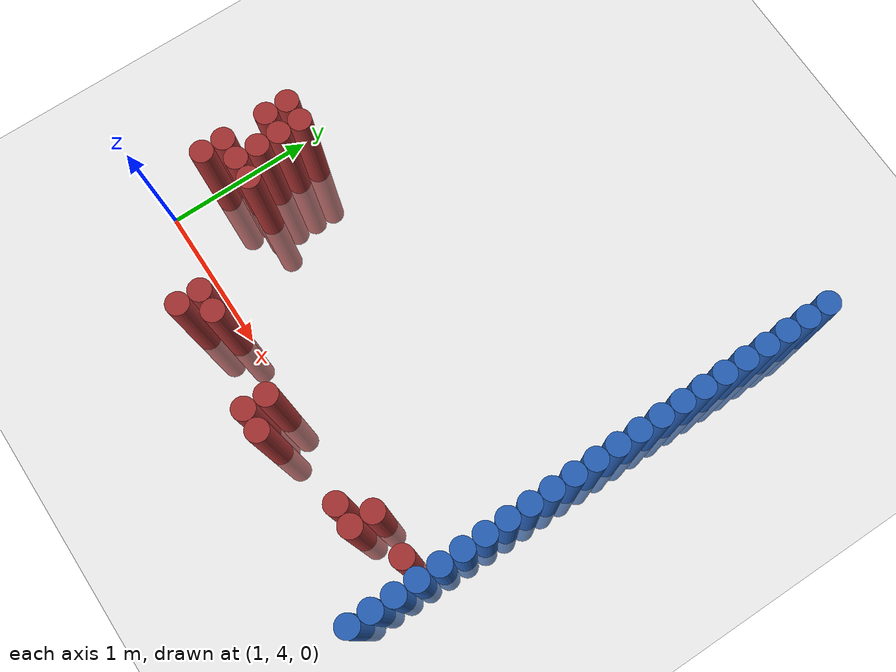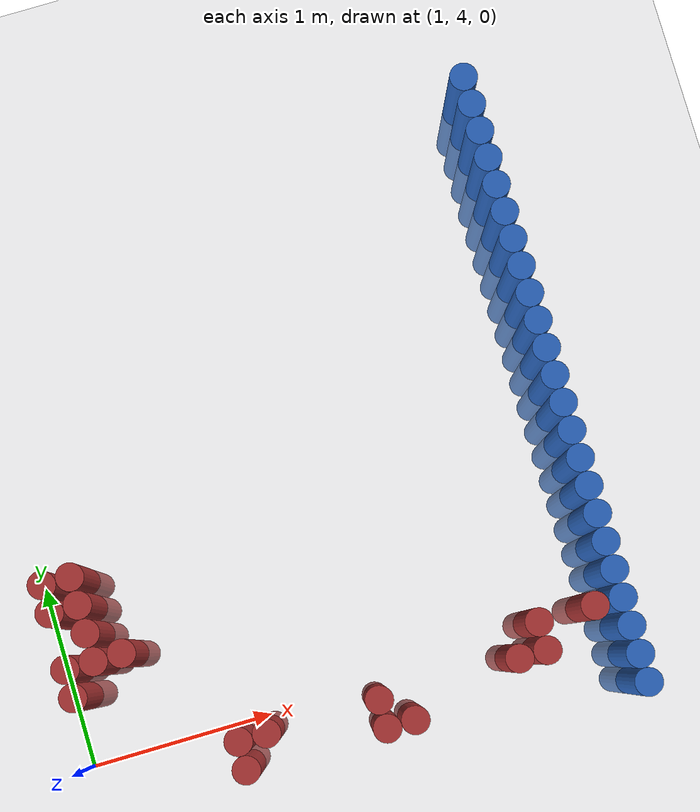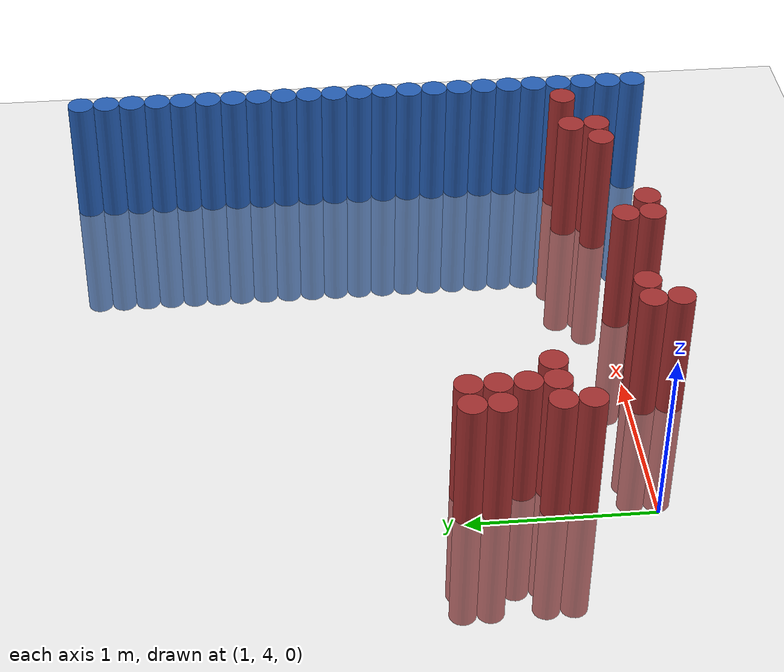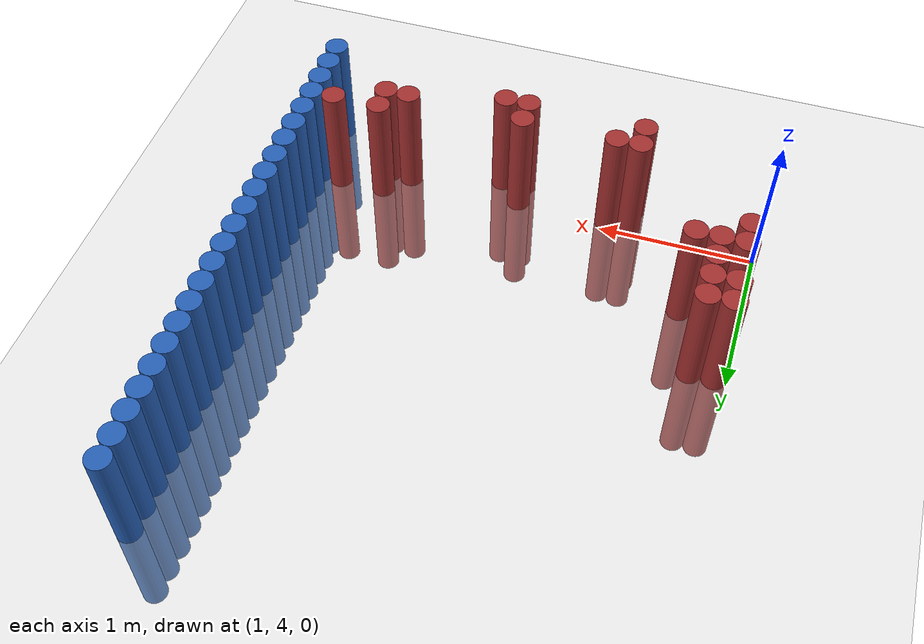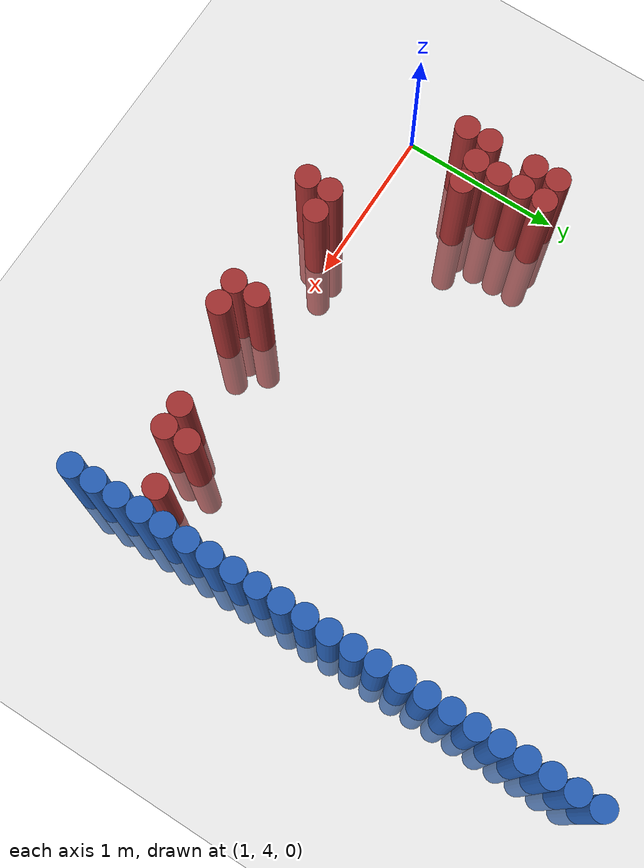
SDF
<sdf version="1.6">
 <world name="default">
  <model name="ground_plane">
   <static>1</static>
   <link name="link">
    <collision name="collision">
     <geometry><plane><normal>0 0 1</normal><size>100 100</size></plane></geometry>
     <surface><friction><ode><mu>100</mu><mu2>50</mu2></ode></friction></surface>
    </collision>
    <visual name="visual">
     <cast_shadows>0</cast_shadows>
     <geometry><plane><normal>0 0 1</normal><size>100 100</size></plane></geometry>
     <material>
      <script><uri>file://media/materials/scripts/gazebo.material</uri><name>Gazebo/Grey</name></script>
     </material>
    </visual>
   </link>
  </model>
  <model name="unit_cylinder_164">
   <static>1</static>
   <pose>3.925000 3.775000 0.000000 0.000000 0.000000 0.000000</pose>
   <link name="link">
    <inertial>
     <mass>1</mass>
     <inertia><ixx>0.145833</ixx><ixy>0</ixy><ixz>0</ixz><iyy>0.145833</iyy><iyz>0</iyz><izz>0.125</izz></inertia>
    </inertial>
    <collision name="collision">
     <geometry><cylinder><radius>0.075000</radius><length>1.5</length></cylinder></geometry>
    </collision>
    <visual name="visual">
     <geometry><cylinder><radius>0.075000</radius><length>1.5</length></cylinder></geometry>
     <material>
      <ambient>0.152000 0.379000 0.720000 1</ambient>
      <diffuse>0.152000 0.379000 0.720000 1</diffuse>
     </material>
     <material>
      <script><name>Gazebo/Grey</name><uri>file://media/materials/scripts/gazebo.material</uri></script>
     </material>
    </visual>
   </link>
  </model>
  <model name="unit_cylinder_166">
   <static>1</static>
   <pose>3.925000 3.925000 0.000000 0.000000 0.000000 0.000000</pose>
   <link name="link">
    <inertial>
     <mass>1</mass>
     <inertia><ixx>0.145833</ixx><ixy>0</ixy><ixz>0</ixz><iyy>0.145833</iyy><iyz>0</iyz><izz>0.125</izz></inertia>
    </inertial>
    <collision name="collision">
     <geometry><cylinder><radius>0.075000</radius><length>1.5</length></cylinder></geometry>
    </collision>
    <visual name="visual">
     <geometry><cylinder><radius>0.075000</radius><length>1.5</length></cylinder></geometry>
     <material>
      <ambient>0.152000 0.379000 0.720000 1</ambient>
      <diffuse>0.152000 0.379000 0.720000 1</diffuse>
     </material>
     <material>
      <script><name>Gazebo/Grey</name><uri>file://media/materials/scripts/gazebo.material</uri></script>
     </material>
    </visual>
   </link>
  </model>
  <model name="unit_cylinder_168">
   <static>1</static>
   <pose>3.925000 4.075000 0.000000 0.000000 0.000000 0.000000</pose>
   <link name="link">
    <inertial>
     <mass>1</mass>
     <inertia><ixx>0.145833</ixx><ixy>0</ixy><ixz>0</ixz><iyy>0.145833</iyy><iyz>0</iyz><izz>0.125</izz></inertia>
    </inertial>
    <collision name="collision">
     <geometry><cylinder><radius>0.075000</radius><length>1.5</length></cylinder></geometry>
    </collision>
    <visual name="visual">
     <geometry><cylinder><radius>0.075000</radius><length>1.5</length></cylinder></geometry>
     <material>
      <ambient>0.152000 0.379000 0.720000 1</ambient>
      <diffuse>0.152000 0.379000 0.720000 1</diffuse>
     </material>
     <material>
      <script><name>Gazebo/Grey</name><uri>file://media/materials/scripts/gazebo.material</uri></script>
     </material>
    </visual>
   </link>
  </model>
  <model name="unit_cylinder_170">
   <static>1</static>
   <pose>3.925000 4.225000 0.000000 0.000000 0.000000 0.000000</pose>
   <link name="link">
    <inertial>
     <mass>1</mass>
     <inertia><ixx>0.145833</ixx><ixy>0</ixy><ixz>0</ixz><iyy>0.145833</iyy><iyz>0</iyz><izz>0.125</izz></inertia>
    </inertial>
    <collision name="collision">
     <geometry><cylinder><radius>0.075000</radius><length>1.5</length></cylinder></geometry>
    </collision>
    <visual name="visual">
     <geometry><cylinder><radius>0.075000</radius><length>1.5</length></cylinder></geometry>
     <material>
      <ambient>0.152000 0.379000 0.720000 1</ambient>
      <diffuse>0.152000 0.379000 0.720000 1</diffuse>
     </material>
     <material>
      <script><name>Gazebo/Grey</name><uri>file://media/materials/scripts/gazebo.material</uri></script>
     </material>
    </visual>
   </link>
  </model>
  <model name="unit_cylinder_172">
   <static>1</static>
   <pose>3.925000 4.375000 0.000000 0.000000 0.000000 0.000000</pose>
   <link name="link">
    <inertial>
     <mass>1</mass>
     <inertia><ixx>0.145833</ixx><ixy>0</ixy><ixz>0</ixz><iyy>0.145833</iyy><iyz>0</iyz><izz>0.125</izz></inertia>
    </inertial>
    <collision name="collision">
     <geometry><cylinder><radius>0.075000</radius><length>1.5</length></cylinder></geometry>
    </collision>
    <visual name="visual">
     <geometry><cylinder><radius>0.075000</radius><length>1.5</length></cylinder></geometry>
     <material>
      <ambient>0.152000 0.379000 0.720000 1</ambient>
      <diffuse>0.152000 0.379000 0.720000 1</diffuse>
     </material>
     <material>
      <script><name>Gazebo/Grey</name><uri>file://media/materials/scripts/gazebo.material</uri></script>
     </material>
    </visual>
   </link>
  </model>
  <model name="unit_cylinder_174">
   <static>1</static>
   <pose>3.925000 4.525000 0.000000 0.000000 0.000000 0.000000</pose>
   <link name="link">
    <inertial>
     <mass>1</mass>
     <inertia><ixx>0.145833</ixx><ixy>0</ixy><ixz>0</ixz><iyy>0.145833</iyy><iyz>0</iyz><izz>0.125</izz></inertia>
    </inertial>
    <collision name="collision">
     <geometry><cylinder><radius>0.075000</radius><length>1.5</length></cylinder></geometry>
    </collision>
    <visual name="visual">
     <geometry><cylinder><radius>0.075000</radius><length>1.5</length></cylinder></geometry>
     <material>
      <ambient>0.152000 0.379000 0.720000 1</ambient>
      <diffuse>0.152000 0.379000 0.720000 1</diffuse>
     </material>
     <material>
      <script><name>Gazebo/Grey</name><uri>file://media/materials/scripts/gazebo.material</uri></script>
     </material>
    </visual>
   </link>
  </model>
  <model name="unit_cylinder_176">
   <static>1</static>
   <pose>3.925000 4.675000 0.000000 0.000000 0.000000 0.000000</pose>
   <link name="link">
    <inertial>
     <mass>1</mass>
     <inertia><ixx>0.145833</ixx><ixy>0</ixy><ixz>0</ixz><iyy>0.145833</iyy><iyz>0</iyz><izz>0.125</izz></inertia>
    </inertial>
    <collision name="collision">
     <geometry><cylinder><radius>0.075000</radius><length>1.5</length></cylinder></geometry>
    </collision>
    <visual name="visual">
     <geometry><cylinder><radius>0.075000</radius><length>1.5</length></cylinder></geometry>
     <material>
      <ambient>0.152000 0.379000 0.720000 1</ambient>
      <diffuse>0.152000 0.379000 0.720000 1</diffuse>
     </material>
     <material>
      <script><name>Gazebo/Grey</name><uri>file://media/materials/scripts/gazebo.material</uri></script>
     </material>
    </visual>
   </link>
  </model>
  <model name="unit_cylinder_178">
   <static>1</static>
   <pose>3.925000 4.825000 0.000000 0.000000 0.000000 0.000000</pose>
   <link name="link">
    <inertial>
     <mass>1</mass>
     <inertia><ixx>0.145833</ixx><ixy>0</ixy><ixz>0</ixz><iyy>0.145833</iyy><iyz>0</iyz><izz>0.125</izz></inertia>
    </inertial>
    <collision name="collision">
     <geometry><cylinder><radius>0.075000</radius><length>1.5</length></cylinder></geometry>
    </collision>
    <visual name="visual">
     <geometry><cylinder><radius>0.075000</radius><length>1.5</length></cylinder></geometry>
     <material>
      <ambient>0.152000 0.379000 0.720000 1</ambient>
      <diffuse>0.152000 0.379000 0.720000 1</diffuse>
     </material>
     <material>
      <script><name>Gazebo/Grey</name><uri>file://media/materials/scripts/gazebo.material</uri></script>
     </material>
    </visual>
   </link>
  </model>
  <model name="unit_cylinder_180">
   <static>1</static>
   <pose>3.925000 4.975000 0.000000 0.000000 0.000000 0.000000</pose>
   <link name="link">
    <inertial>
     <mass>1</mass>
     <inertia><ixx>0.145833</ixx><ixy>0</ixy><ixz>0</ixz><iyy>0.145833</iyy><iyz>0</iyz><izz>0.125</izz></inertia>
    </inertial>
    <collision name="collision">
     <geometry><cylinder><radius>0.075000</radius><length>1.5</length></cylinder></geometry>
    </collision>
    <visual name="visual">
     <geometry><cylinder><radius>0.075000</radius><length>1.5</length></cylinder></geometry>
     <material>
      <ambient>0.152000 0.379000 0.720000 1</ambient>
      <diffuse>0.152000 0.379000 0.720000 1</diffuse>
     </material>
     <material>
      <script><name>Gazebo/Grey</name><uri>file://media/materials/scripts/gazebo.material</uri></script>
     </material>
    </visual>
   </link>
  </model>
  <model name="unit_cylinder_182">
   <static>1</static>
   <pose>3.925000 5.125000 0.000000 0.000000 0.000000 0.000000</pose>
   <link name="link">
    <inertial>
     <mass>1</mass>
     <inertia><ixx>0.145833</ixx><ixy>0</ixy><ixz>0</ixz><iyy>0.145833</iyy><iyz>0</iyz><izz>0.125</izz></inertia>
    </inertial>
    <collision name="collision">
     <geometry><cylinder><radius>0.075000</radius><length>1.5</length></cylinder></geometry>
    </collision>
    <visual name="visual">
     <geometry><cylinder><radius>0.075000</radius><length>1.5</length></cylinder></geometry>
     <material>
      <ambient>0.152000 0.379000 0.720000 1</ambient>
      <diffuse>0.152000 0.379000 0.720000 1</diffuse>
     </material>
     <material>
      <script><name>Gazebo/Grey</name><uri>file://media/materials/scripts/gazebo.material</uri></script>
     </material>
    </visual>
   </link>
  </model>
  <model name="unit_cylinder_184">
   <static>1</static>
   <pose>3.925000 5.275000 0.000000 0.000000 0.000000 0.000000</pose>
   <link name="link">
    <inertial>
     <mass>1</mass>
     <inertia><ixx>0.145833</ixx><ixy>0</ixy><ixz>0</ixz><iyy>0.145833</iyy><iyz>0</iyz><izz>0.125</izz></inertia>
    </inertial>
    <collision name="collision">
     <geometry><cylinder><radius>0.075000</radius><length>1.5</length></cylinder></geometry>
    </collision>
    <visual name="visual">
     <geometry><cylinder><radius>0.075000</radius><length>1.5</length></cylinder></geometry>
     <material>
      <ambient>0.152000 0.379000 0.720000 1</ambient>
      <diffuse>0.152000 0.379000 0.720000 1</diffuse>
     </material>
     <material>
      <script><name>Gazebo/Grey</name><uri>file://media/materials/scripts/gazebo.material</uri></script>
     </material>
    </visual>
   </link>
  </model>
  <model name="unit_cylinder_186">
   <static>1</static>
   <pose>3.925000 5.425000 0.000000 0.000000 0.000000 0.000000</pose>
   <link name="link">
    <inertial>
     <mass>1</mass>
     <inertia><ixx>0.145833</ixx><ixy>0</ixy><ixz>0</ixz><iyy>0.145833</iyy><iyz>0</iyz><izz>0.125</izz></inertia>
    </inertial>
    <collision name="collision">
     <geometry><cylinder><radius>0.075000</radius><length>1.5</length></cylinder></geometry>
    </collision>
    <visual name="visual">
     <geometry><cylinder><radius>0.075000</radius><length>1.5</length></cylinder></geometry>
     <material>
      <ambient>0.152000 0.379000 0.720000 1</ambient>
      <diffuse>0.152000 0.379000 0.720000 1</diffuse>
     </material>
     <material>
      <script><name>Gazebo/Grey</name><uri>file://media/materials/scripts/gazebo.material</uri></script>
     </material>
    </visual>
   </link>
  </model>
  <model name="unit_cylinder_188">
   <static>1</static>
   <pose>3.925000 5.575000 0.000000 0.000000 0.000000 0.000000</pose>
   <link name="link">
    <inertial>
     <mass>1</mass>
     <inertia><ixx>0.145833</ixx><ixy>0</ixy><ixz>0</ixz><iyy>0.145833</iyy><iyz>0</iyz><izz>0.125</izz></inertia>
    </inertial>
    <collision name="collision">
     <geometry><cylinder><radius>0.075000</radius><length>1.5</length></cylinder></geometry>
    </collision>
    <visual name="visual">
     <geometry><cylinder><radius>0.075000</radius><length>1.5</length></cylinder></geometry>
     <material>
      <ambient>0.152000 0.379000 0.720000 1</ambient>
      <diffuse>0.152000 0.379000 0.720000 1</diffuse>
     </material>
     <material>
      <script><name>Gazebo/Grey</name><uri>file://media/materials/scripts/gazebo.material</uri></script>
     </material>
    </visual>
   </link>
  </model>
  <model name="unit_cylinder_190">
   <static>1</static>
   <pose>3.925000 5.725000 0.000000 0.000000 0.000000 0.000000</pose>
   <link name="link">
    <inertial>
     <mass>1</mass>
     <inertia><ixx>0.145833</ixx><ixy>0</ixy><ixz>0</ixz><iyy>0.145833</iyy><iyz>0</iyz><izz>0.125</izz></inertia>
    </inertial>
    <collision name="collision">
     <geometry><cylinder><radius>0.075000</radius><length>1.5</length></cylinder></geometry>
    </collision>
    <visual name="visual">
     <geometry><cylinder><radius>0.075000</radius><length>1.5</length></cylinder></geometry>
     <material>
      <ambient>0.152000 0.379000 0.720000 1</ambient>
      <diffuse>0.152000 0.379000 0.720000 1</diffuse>
     </material>
     <material>
      <script><name>Gazebo/Grey</name><uri>file://media/materials/scripts/gazebo.material</uri></script>
     </material>
    </visual>
   </link>
  </model>
  <model name="unit_cylinder_192">
   <static>1</static>
   <pose>3.925000 5.875000 0.000000 0.000000 0.000000 0.000000</pose>
   <link name="link">
    <inertial>
     <mass>1</mass>
     <inertia><ixx>0.145833</ixx><ixy>0</ixy><ixz>0</ixz><iyy>0.145833</iyy><iyz>0</iyz><izz>0.125</izz></inertia>
    </inertial>
    <collision name="collision">
     <geometry><cylinder><radius>0.075000</radius><length>1.5</length></cylinder></geometry>
    </collision>
    <visual name="visual">
     <geometry><cylinder><radius>0.075000</radius><length>1.5</length></cylinder></geometry>
     <material>
      <ambient>0.152000 0.379000 0.720000 1</ambient>
      <diffuse>0.152000 0.379000 0.720000 1</diffuse>
     </material>
     <material>
      <script><name>Gazebo/Grey</name><uri>file://media/materials/scripts/gazebo.material</uri></script>
     </material>
    </visual>
   </link>
  </model>
  <model name="unit_cylinder_194">
   <static>1</static>
   <pose>3.925000 6.025000 0.000000 0.000000 0.000000 0.000000</pose>
   <link name="link">
    <inertial>
     <mass>1</mass>
     <inertia><ixx>0.145833</ixx><ixy>0</ixy><ixz>0</ixz><iyy>0.145833</iyy><iyz>0</iyz><izz>0.125</izz></inertia>
    </inertial>
    <collision name="collision">
     <geometry><cylinder><radius>0.075000</radius><length>1.5</length></cylinder></geometry>
    </collision>
    <visual name="visual">
     <geometry><cylinder><radius>0.075000</radius><length>1.5</length></cylinder></geometry>
     <material>
      <ambient>0.152000 0.379000 0.720000 1</ambient>
      <diffuse>0.152000 0.379000 0.720000 1</diffuse>
     </material>
     <material>
      <script><name>Gazebo/Grey</name><uri>file://media/materials/scripts/gazebo.material</uri></script>
     </material>
    </visual>
   </link>
  </model>
  <model name="unit_cylinder_196">
   <static>1</static>
   <pose>3.925000 6.175000 0.000000 0.000000 0.000000 0.000000</pose>
   <link name="link">
    <inertial>
     <mass>1</mass>
     <inertia><ixx>0.145833</ixx><ixy>0</ixy><ixz>0</ixz><iyy>0.145833</iyy><iyz>0</iyz><izz>0.125</izz></inertia>
    </inertial>
    <collision name="collision">
     <geometry><cylinder><radius>0.075000</radius><length>1.5</length></cylinder></geometry>
    </collision>
    <visual name="visual">
     <geometry><cylinder><radius>0.075000</radius><length>1.5</length></cylinder></geometry>
     <material>
      <ambient>0.152000 0.379000 0.720000 1</ambient>
      <diffuse>0.152000 0.379000 0.720000 1</diffuse>
     </material>
     <material>
      <script><name>Gazebo/Grey</name><uri>file://media/materials/scripts/gazebo.material</uri></script>
     </material>
    </visual>
   </link>
  </model>
  <model name="unit_cylinder_198">
   <static>1</static>
   <pose>3.925000 6.325000 0.000000 0.000000 0.000000 0.000000</pose>
   <link name="link">
    <inertial>
     <mass>1</mass>
     <inertia><ixx>0.145833</ixx><ixy>0</ixy><ixz>0</ixz><iyy>0.145833</iyy><iyz>0</iyz><izz>0.125</izz></inertia>
    </inertial>
    <collision name="collision">
     <geometry><cylinder><radius>0.075000</radius><length>1.5</length></cylinder></geometry>
    </collision>
    <visual name="visual">
     <geometry><cylinder><radius>0.075000</radius><length>1.5</length></cylinder></geometry>
     <material>
      <ambient>0.152000 0.379000 0.720000 1</ambient>
      <diffuse>0.152000 0.379000 0.720000 1</diffuse>
     </material>
     <material>
      <script><name>Gazebo/Grey</name><uri>file://media/materials/scripts/gazebo.material</uri></script>
     </material>
    </visual>
   </link>
  </model>
  <model name="unit_cylinder_200">
   <static>1</static>
   <pose>3.925000 6.475000 0.000000 0.000000 0.000000 0.000000</pose>
   <link name="link">
    <inertial>
     <mass>1</mass>
     <inertia><ixx>0.145833</ixx><ixy>0</ixy><ixz>0</ixz><iyy>0.145833</iyy><iyz>0</iyz><izz>0.125</izz></inertia>
    </inertial>
    <collision name="collision">
     <geometry><cylinder><radius>0.075000</radius><length>1.5</length></cylinder></geometry>
    </collision>
    <visual name="visual">
     <geometry><cylinder><radius>0.075000</radius><length>1.5</length></cylinder></geometry>
     <material>
      <ambient>0.152000 0.379000 0.720000 1</ambient>
      <diffuse>0.152000 0.379000 0.720000 1</diffuse>
     </material>
     <material>
      <script><name>Gazebo/Grey</name><uri>file://media/materials/scripts/gazebo.material</uri></script>
     </material>
    </visual>
   </link>
  </model>
  <model name="unit_cylinder_202">
   <static>1</static>
   <pose>3.925000 6.625000 0.000000 0.000000 0.000000 0.000000</pose>
   <link name="link">
    <inertial>
     <mass>1</mass>
     <inertia><ixx>0.145833</ixx><ixy>0</ixy><ixz>0</ixz><iyy>0.145833</iyy><iyz>0</iyz><izz>0.125</izz></inertia>
    </inertial>
    <collision name="collision">
     <geometry><cylinder><radius>0.075000</radius><length>1.5</length></cylinder></geometry>
    </collision>
    <visual name="visual">
     <geometry><cylinder><radius>0.075000</radius><length>1.5</length></cylinder></geometry>
     <material>
      <ambient>0.152000 0.379000 0.720000 1</ambient>
      <diffuse>0.152000 0.379000 0.720000 1</diffuse>
     </material>
     <material>
      <script><name>Gazebo/Grey</name><uri>file://media/materials/scripts/gazebo.material</uri></script>
     </material>
    </visual>
   </link>
  </model>
  <model name="unit_cylinder_204">
   <static>1</static>
   <pose>3.925000 6.775000 0.000000 0.000000 0.000000 0.000000</pose>
   <link name="link">
    <inertial>
     <mass>1</mass>
     <inertia><ixx>0.145833</ixx><ixy>0</ixy><ixz>0</ixz><iyy>0.145833</iyy><iyz>0</iyz><izz>0.125</izz></inertia>
    </inertial>
    <collision name="collision">
     <geometry><cylinder><radius>0.075000</radius><length>1.5</length></cylinder></geometry>
    </collision>
    <visual name="visual">
     <geometry><cylinder><radius>0.075000</radius><length>1.5</length></cylinder></geometry>
     <material>
      <ambient>0.152000 0.379000 0.720000 1</ambient>
      <diffuse>0.152000 0.379000 0.720000 1</diffuse>
     </material>
     <material>
      <script><name>Gazebo/Grey</name><uri>file://media/materials/scripts/gazebo.material</uri></script>
     </material>
    </visual>
   </link>
  </model>
  <model name="unit_cylinder_206">
   <static>1</static>
   <pose>3.925000 6.925000 0.000000 0.000000 0.000000 0.000000</pose>
   <link name="link">
    <inertial>
     <mass>1</mass>
     <inertia><ixx>0.145833</ixx><ixy>0</ixy><ixz>0</ixz><iyy>0.145833</iyy><iyz>0</iyz><izz>0.125</izz></inertia>
    </inertial>
    <collision name="collision">
     <geometry><cylinder><radius>0.075000</radius><length>1.5</length></cylinder></geometry>
    </collision>
    <visual name="visual">
     <geometry><cylinder><radius>0.075000</radius><length>1.5</length></cylinder></geometry>
     <material>
      <ambient>0.152000 0.379000 0.720000 1</ambient>
      <diffuse>0.152000 0.379000 0.720000 1</diffuse>
     </material>
     <material>
      <script><name>Gazebo/Grey</name><uri>file://media/materials/scripts/gazebo.material</uri></script>
     </material>
    </visual>
   </link>
  </model>
  <model name="unit_cylinder_334">
   <static>1</static>
   <pose>1.075000 4.375000 0.000000 0.000000 0.000000 0.000000</pose>
   <link name="link">
    <inertial>
     <mass>1</mass>
     <inertia><ixx>0.145833</ixx><ixy>0</ixy><ixz>0</ixz><iyy>0.145833</iyy><iyz>0</iyz><izz>0.125</izz></inertia>
    </inertial>
    <collision name="collision">
     <geometry><cylinder><radius>0.075000</radius><length>1.5</length></cylinder></geometry>
    </collision>
    <visual name="visual">
     <geometry><cylinder><radius>0.075000</radius><length>1.5</length></cylinder></geometry>
     <material>
      <ambient>0.648000 0.192000 0.192000 1</ambient>
      <diffuse>0.648000 0.192000 0.192000 1</diffuse>
     </material>
     <material>
      <script><name>Gazebo/Grey</name><uri>file://media/materials/scripts/gazebo.material</uri></script>
     </material>
    </visual>
   </link>
  </model>
  <model name="unit_cylinder_335">
   <static>1</static>
   <pose>1.075000 4.525000 0.000000 0.000000 0.000000 0.000000</pose>
   <link name="link">
    <inertial>
     <mass>1</mass>
     <inertia><ixx>0.145833</ixx><ixy>0</ixy><ixz>0</ixz><iyy>0.145833</iyy><iyz>0</iyz><izz>0.125</izz></inertia>
    </inertial>
    <collision name="collision">
     <geometry><cylinder><radius>0.075000</radius><length>1.5</length></cylinder></geometry>
    </collision>
    <visual name="visual">
     <geometry><cylinder><radius>0.075000</radius><length>1.5</length></cylinder></geometry>
     <material>
      <ambient>0.648000 0.192000 0.192000 1</ambient>
      <diffuse>0.648000 0.192000 0.192000 1</diffuse>
     </material>
     <material>
      <script><name>Gazebo/Grey</name><uri>file://media/materials/scripts/gazebo.material</uri></script>
     </material>
    </visual>
   </link>
  </model>
  <model name="unit_cylinder_336">
   <static>1</static>
   <pose>1.075000 4.825000 0.000000 0.000000 0.000000 0.000000</pose>
   <link name="link">
    <inertial>
     <mass>1</mass>
     <inertia><ixx>0.145833</ixx><ixy>0</ixy><ixz>0</ixz><iyy>0.145833</iyy><iyz>0</iyz><izz>0.125</izz></inertia>
    </inertial>
    <collision name="collision">
     <geometry><cylinder><radius>0.075000</radius><length>1.5</length></cylinder></geometry>
    </collision>
    <visual name="visual">
     <geometry><cylinder><radius>0.075000</radius><length>1.5</length></cylinder></geometry>
     <material>
      <ambient>0.648000 0.192000 0.192000 1</ambient>
      <diffuse>0.648000 0.192000 0.192000 1</diffuse>
     </material>
     <material>
      <script><name>Gazebo/Grey</name><uri>file://media/materials/scripts/gazebo.material</uri></script>
     </material>
    </visual>
   </link>
  </model>
  <model name="unit_cylinder_337">
   <static>1</static>
   <pose>1.075000 4.975000 0.000000 0.000000 0.000000 0.000000</pose>
   <link name="link">
    <inertial>
     <mass>1</mass>
     <inertia><ixx>0.145833</ixx><ixy>0</ixy><ixz>0</ixz><iyy>0.145833</iyy><iyz>0</iyz><izz>0.125</izz></inertia>
    </inertial>
    <collision name="collision">
     <geometry><cylinder><radius>0.075000</radius><length>1.5</length></cylinder></geometry>
    </collision>
    <visual name="visual">
     <geometry><cylinder><radius>0.075000</radius><length>1.5</length></cylinder></geometry>
     <material>
      <ambient>0.648000 0.192000 0.192000 1</ambient>
      <diffuse>0.648000 0.192000 0.192000 1</diffuse>
     </material>
     <material>
      <script><name>Gazebo/Grey</name><uri>file://media/materials/scripts/gazebo.material</uri></script>
     </material>
    </visual>
   </link>
  </model>
  <model name="unit_cylinder_340">
   <static>1</static>
   <pose>1.225000 4.525000 0.000000 0.000000 0.000000 0.000000</pose>
   <link name="link">
    <inertial>
     <mass>1</mass>
     <inertia><ixx>0.145833</ixx><ixy>0</ixy><ixz>0</ixz><iyy>0.145833</iyy><iyz>0</iyz><izz>0.125</izz></inertia>
    </inertial>
    <collision name="collision">
     <geometry><cylinder><radius>0.075000</radius><length>1.5</length></cylinder></geometry>
    </collision>
    <visual name="visual">
     <geometry><cylinder><radius>0.075000</radius><length>1.5</length></cylinder></geometry>
     <material>
      <ambient>0.648000 0.192000 0.192000 1</ambient>
      <diffuse>0.648000 0.192000 0.192000 1</diffuse>
     </material>
     <material>
      <script><name>Gazebo/Grey</name><uri>file://media/materials/scripts/gazebo.material</uri></script>
     </material>
    </visual>
   </link>
  </model>
  <model name="unit_cylinder_341">
   <static>1</static>
   <pose>1.225000 4.675000 0.000000 0.000000 0.000000 0.000000</pose>
   <link name="link">
    <inertial>
     <mass>1</mass>
     <inertia><ixx>0.145833</ixx><ixy>0</ixy><ixz>0</ixz><iyy>0.145833</iyy><iyz>0</iyz><izz>0.125</izz></inertia>
    </inertial>
    <collision name="collision">
     <geometry><cylinder><radius>0.075000</radius><length>1.5</length></cylinder></geometry>
    </collision>
    <visual name="visual">
     <geometry><cylinder><radius>0.075000</radius><length>1.5</length></cylinder></geometry>
     <material>
      <ambient>0.648000 0.192000 0.192000 1</ambient>
      <diffuse>0.648000 0.192000 0.192000 1</diffuse>
     </material>
     <material>
      <script><name>Gazebo/Grey</name><uri>file://media/materials/scripts/gazebo.material</uri></script>
     </material>
    </visual>
   </link>
  </model>
  <model name="unit_cylinder_342">
   <static>1</static>
   <pose>1.225000 4.825000 0.000000 0.000000 0.000000 0.000000</pose>
   <link name="link">
    <inertial>
     <mass>1</mass>
     <inertia><ixx>0.145833</ixx><ixy>0</ixy><ixz>0</ixz><iyy>0.145833</iyy><iyz>0</iyz><izz>0.125</izz></inertia>
    </inertial>
    <collision name="collision">
     <geometry><cylinder><radius>0.075000</radius><length>1.5</length></cylinder></geometry>
    </collision>
    <visual name="visual">
     <geometry><cylinder><radius>0.075000</radius><length>1.5</length></cylinder></geometry>
     <material>
      <ambient>0.648000 0.192000 0.192000 1</ambient>
      <diffuse>0.648000 0.192000 0.192000 1</diffuse>
     </material>
     <material>
      <script><name>Gazebo/Grey</name><uri>file://media/materials/scripts/gazebo.material</uri></script>
     </material>
    </visual>
   </link>
  </model>
  <model name="unit_cylinder_343">
   <static>1</static>
   <pose>1.225000 4.975000 0.000000 0.000000 0.000000 0.000000</pose>
   <link name="link">
    <inertial>
     <mass>1</mass>
     <inertia><ixx>0.145833</ixx><ixy>0</ixy><ixz>0</ixz><iyy>0.145833</iyy><iyz>0</iyz><izz>0.125</izz></inertia>
    </inertial>
    <collision name="collision">
     <geometry><cylinder><radius>0.075000</radius><length>1.5</length></cylinder></geometry>
    </collision>
    <visual name="visual">
     <geometry><cylinder><radius>0.075000</radius><length>1.5</length></cylinder></geometry>
     <material>
      <ambient>0.648000 0.192000 0.192000 1</ambient>
      <diffuse>0.648000 0.192000 0.192000 1</diffuse>
     </material>
     <material>
      <script><name>Gazebo/Grey</name><uri>file://media/materials/scripts/gazebo.material</uri></script>
     </material>
    </visual>
   </link>
  </model>
  <model name="unit_cylinder_345">
   <static>1</static>
   <pose>1.375000 4.525000 0.000000 0.000000 0.000000 0.000000</pose>
   <link name="link">
    <inertial>
     <mass>1</mass>
     <inertia><ixx>0.145833</ixx><ixy>0</ixy><ixz>0</ixz><iyy>0.145833</iyy><iyz>0</iyz><izz>0.125</izz></inertia>
    </inertial>
    <collision name="collision">
     <geometry><cylinder><radius>0.075000</radius><length>1.5</length></cylinder></geometry>
    </collision>
    <visual name="visual">
     <geometry><cylinder><radius>0.075000</radius><length>1.5</length></cylinder></geometry>
     <material>
      <ambient>0.648000 0.192000 0.192000 1</ambient>
      <diffuse>0.648000 0.192000 0.192000 1</diffuse>
     </material>
     <material>
      <script><name>Gazebo/Grey</name><uri>file://media/materials/scripts/gazebo.material</uri></script>
     </material>
    </visual>
   </link>
  </model>
  <model name="unit_cylinder_349">
   <static>1</static>
   <pose>1.825000 3.775000 0.000000 0.000000 0.000000 0.000000</pose>
   <link name="link">
    <inertial>
     <mass>1</mass>
     <inertia><ixx>0.145833</ixx><ixy>0</ixy><ixz>0</ixz><iyy>0.145833</iyy><iyz>0</iyz><izz>0.125</izz></inertia>
    </inertial>
    <collision name="collision">
     <geometry><cylinder><radius>0.075000</radius><length>1.5</length></cylinder></geometry>
    </collision>
    <visual name="visual">
     <geometry><cylinder><radius>0.075000</radius><length>1.5</length></cylinder></geometry>
     <material>
      <ambient>0.648000 0.192000 0.192000 1</ambient>
      <diffuse>0.648000 0.192000 0.192000 1</diffuse>
     </material>
     <material>
      <script><name>Gazebo/Grey</name><uri>file://media/materials/scripts/gazebo.material</uri></script>
     </material>
    </visual>
   </link>
  </model>
  <model name="unit_cylinder_350">
   <static>1</static>
   <pose>1.825000 3.925000 0.000000 0.000000 0.000000 0.000000</pose>
   <link name="link">
    <inertial>
     <mass>1</mass>
     <inertia><ixx>0.145833</ixx><ixy>0</ixy><ixz>0</ixz><iyy>0.145833</iyy><iyz>0</iyz><izz>0.125</izz></inertia>
    </inertial>
    <collision name="collision">
     <geometry><cylinder><radius>0.075000</radius><length>1.5</length></cylinder></geometry>
    </collision>
    <visual name="visual">
     <geometry><cylinder><radius>0.075000</radius><length>1.5</length></cylinder></geometry>
     <material>
      <ambient>0.648000 0.192000 0.192000 1</ambient>
      <diffuse>0.648000 0.192000 0.192000 1</diffuse>
     </material>
     <material>
      <script><name>Gazebo/Grey</name><uri>file://media/materials/scripts/gazebo.material</uri></script>
     </material>
    </visual>
   </link>
  </model>
  <model name="unit_cylinder_354">
   <static>1</static>
   <pose>1.975000 3.925000 0.000000 0.000000 0.000000 0.000000</pose>
   <link name="link">
    <inertial>
     <mass>1</mass>
     <inertia><ixx>0.145833</ixx><ixy>0</ixy><ixz>0</ixz><iyy>0.145833</iyy><iyz>0</iyz><izz>0.125</izz></inertia>
    </inertial>
    <collision name="collision">
     <geometry><cylinder><radius>0.075000</radius><length>1.5</length></cylinder></geometry>
    </collision>
    <visual name="visual">
     <geometry><cylinder><radius>0.075000</radius><length>1.5</length></cylinder></geometry>
     <material>
      <ambient>0.648000 0.192000 0.192000 1</ambient>
      <diffuse>0.648000 0.192000 0.192000 1</diffuse>
     </material>
     <material>
      <script><name>Gazebo/Grey</name><uri>file://media/materials/scripts/gazebo.material</uri></script>
     </material>
    </visual>
   </link>
  </model>
  <model name="unit_cylinder_355">
   <static>1</static>
   <pose>2.575000 3.775000 0.000000 0.000000 0.000000 0.000000</pose>
   <link name="link">
    <inertial>
     <mass>1</mass>
     <inertia><ixx>0.145833</ixx><ixy>0</ixy><ixz>0</ixz><iyy>0.145833</iyy><iyz>0</iyz><izz>0.125</izz></inertia>
    </inertial>
    <collision name="collision">
     <geometry><cylinder><radius>0.075000</radius><length>1.5</length></cylinder></geometry>
    </collision>
    <visual name="visual">
     <geometry><cylinder><radius>0.075000</radius><length>1.5</length></cylinder></geometry>
     <material>
      <ambient>0.648000 0.192000 0.192000 1</ambient>
      <diffuse>0.648000 0.192000 0.192000 1</diffuse>
     </material>
     <material>
      <script><name>Gazebo/Grey</name><uri>file://media/materials/scripts/gazebo.material</uri></script>
     </material>
    </visual>
   </link>
  </model>
  <model name="unit_cylinder_356">
   <static>1</static>
   <pose>2.575000 3.925000 0.000000 0.000000 0.000000 0.000000</pose>
   <link name="link">
    <inertial>
     <mass>1</mass>
     <inertia><ixx>0.145833</ixx><ixy>0</ixy><ixz>0</ixz><iyy>0.145833</iyy><iyz>0</iyz><izz>0.125</izz></inertia>
    </inertial>
    <collision name="collision">
     <geometry><cylinder><radius>0.075000</radius><length>1.5</length></cylinder></geometry>
    </collision>
    <visual name="visual">
     <geometry><cylinder><radius>0.075000</radius><length>1.5</length></cylinder></geometry>
     <material>
      <ambient>0.648000 0.192000 0.192000 1</ambient>
      <diffuse>0.648000 0.192000 0.192000 1</diffuse>
     </material>
     <material>
      <script><name>Gazebo/Grey</name><uri>file://media/materials/scripts/gazebo.material</uri></script>
     </material>
    </visual>
   </link>
  </model>
  <model name="unit_cylinder_357">
   <static>1</static>
   <pose>2.725000 3.775000 0.000000 0.000000 0.000000 0.000000</pose>
   <link name="link">
    <inertial>
     <mass>1</mass>
     <inertia><ixx>0.145833</ixx><ixy>0</ixy><ixz>0</ixz><iyy>0.145833</iyy><iyz>0</iyz><izz>0.125</izz></inertia>
    </inertial>
    <collision name="collision">
     <geometry><cylinder><radius>0.075000</radius><length>1.5</length></cylinder></geometry>
    </collision>
    <visual name="visual">
     <geometry><cylinder><radius>0.075000</radius><length>1.5</length></cylinder></geometry>
     <material>
      <ambient>0.648000 0.192000 0.192000 1</ambient>
      <diffuse>0.648000 0.192000 0.192000 1</diffuse>
     </material>
     <material>
      <script><name>Gazebo/Grey</name><uri>file://media/materials/scripts/gazebo.material</uri></script>
     </material>
    </visual>
   </link>
  </model>
  <model name="unit_cylinder_358">
   <static>1</static>
   <pose>3.325000 3.925000 0.000000 0.000000 0.000000 0.000000</pose>
   <link name="link">
    <inertial>
     <mass>1</mass>
     <inertia><ixx>0.145833</ixx><ixy>0</ixy><ixz>0</ixz><iyy>0.145833</iyy><iyz>0</iyz><izz>0.125</izz></inertia>
    </inertial>
    <collision name="collision">
     <geometry><cylinder><radius>0.075000</radius><length>1.5</length></cylinder></geometry>
    </collision>
    <visual name="visual">
     <geometry><cylinder><radius>0.075000</radius><length>1.5</length></cylinder></geometry>
     <material>
      <ambient>0.648000 0.192000 0.192000 1</ambient>
      <diffuse>0.648000 0.192000 0.192000 1</diffuse>
     </material>
     <material>
      <script><name>Gazebo/Grey</name><uri>file://media/materials/scripts/gazebo.material</uri></script>
     </material>
    </visual>
   </link>
  </model>
  <model name="unit_cylinder_360">
   <static>1</static>
   <pose>3.475000 3.925000 0.000000 0.000000 0.000000 0.000000</pose>
   <link name="link">
    <inertial>
     <mass>1</mass>
     <inertia><ixx>0.145833</ixx><ixy>0</ixy><ixz>0</ixz><iyy>0.145833</iyy><iyz>0</iyz><izz>0.125</izz></inertia>
    </inertial>
    <collision name="collision">
     <geometry><cylinder><radius>0.075000</radius><length>1.5</length></cylinder></geometry>
    </collision>
    <visual name="visual">
     <geometry><cylinder><radius>0.075000</radius><length>1.5</length></cylinder></geometry>
     <material>
      <ambient>0.648000 0.192000 0.192000 1</ambient>
      <diffuse>0.648000 0.192000 0.192000 1</diffuse>
     </material>
     <material>
      <script><name>Gazebo/Grey</name><uri>file://media/materials/scripts/gazebo.material</uri></script>
     </material>
    </visual>
   </link>
  </model>
  <model name="unit_cylinder_361">
   <static>1</static>
   <pose>3.475000 4.075000 0.000000 0.000000 0.000000 0.000000</pose>
   <link name="link">
    <inertial>
     <mass>1</mass>
     <inertia><ixx>0.145833</ixx><ixy>0</ixy><ixz>0</ixz><iyy>0.145833</iyy><iyz>0</iyz><izz>0.125</izz></inertia>
    </inertial>
    <collision name="collision">
     <geometry><cylinder><radius>0.075000</radius><length>1.5</length></cylinder></geometry>
    </collision>
    <visual name="visual">
     <geometry><cylinder><radius>0.075000</radius><length>1.5</length></cylinder></geometry>
     <material>
      <ambient>0.648000 0.192000 0.192000 1</ambient>
      <diffuse>0.648000 0.192000 0.192000 1</diffuse>
     </material>
     <material>
      <script><name>Gazebo/Grey</name><uri>file://media/materials/scripts/gazebo.material</uri></script>
     </material>
    </visual>
   </link>
  </model>
  <model name="unit_cylinder_380">
   <static>1</static>
   <pose>3.775000 4.075000 0.000000 0.000000 0.000000 0.000000</pose>
   <link name="link">
    <inertial>
     <mass>1</mass>
     <inertia><ixx>0.145833</ixx><ixy>0</ixy><ixz>0</ixz><iyy>0.145833</iyy><iyz>0</iyz><izz>0.125</izz></inertia>
    </inertial>
    <collision name="collision">
     <geometry><cylinder><radius>0.075000</radius><length>1.5</length></cylinder></geometry>
    </collision>
    <visual name="visual">
     <geometry><cylinder><radius>0.075000</radius><length>1.5</length></cylinder></geometry>
     <material>
      <ambient>0.648000 0.192000 0.192000 1</ambient>
      <diffuse>0.648000 0.192000 0.192000 1</diffuse>
     </material>
     <material>
      <script><name>Gazebo/Grey</name><uri>file://media/materials/scripts/gazebo.material</uri></script>
     </material>
    </visual>
   </link>
  </model>
  <model name="unit_cylinder_418">
   <static>1</static>
   <pose>3.925000 3.625000 0.000000 0.000000 0.000000 0.000000</pose>
   <link name="link">
    <inertial>
     <mass>1</mass>
     <inertia><ixx>0.145833</ixx><ixy>0</ixy><ixz>0</ixz><iyy>0.145833</iyy><iyz>0</iyz><izz>0.125</izz></inertia>
    </inertial>
    <collision name="collision">
     <geometry><cylinder><radius>0.075000</radius><length>1.5</length></cylinder></geometry>
    </collision>
    <visual name="visual">
     <geometry><cylinder><radius>0.075000</radius><length>1.5</length></cylinder></geometry>
     <material>
      <ambient>0.152000 0.379000 0.720000 1</ambient>
      <diffuse>0.152000 0.379000 0.720000 1</diffuse>
     </material>
     <material>
      <script><name>Gazebo/Grey</name><uri>file://media/materials/scripts/gazebo.material</uri></script>
     </material>
    </visual>
   </link>
  </model>
  <model name="unit_cylinder_419">
   <static>1</static>
   <pose>3.925000 3.775000 0.000000 0.000000 0.000000 0.000000</pose>
   <link name="link">
    <inertial>
     <mass>1</mass>
     <inertia><ixx>0.145833</ixx><ixy>0</ixy><ixz>0</ixz><iyy>0.145833</iyy><iyz>0</iyz><izz>0.125</izz></inertia>
    </inertial>
    <collision name="collision">
     <geometry><cylinder><radius>0.075000</radius><length>1.5</length></cylinder></geometry>
    </collision>
    <visual name="visual">
     <geometry><cylinder><radius>0.075000</radius><length>1.5</length></cylinder></geometry>
     <material>
      <ambient>0.152000 0.379000 0.720000 1</ambient>
      <diffuse>0.152000 0.379000 0.720000 1</diffuse>
     </material>
     <material>
      <script><name>Gazebo/Grey</name><uri>file://media/materials/scripts/gazebo.material</uri></script>
     </material>
    </visual>
   </link>
  </model>
  <model name="unit_cylinder_420">
   <static>1</static>
   <pose>3.925000 3.925000 0.000000 0.000000 0.000000 0.000000</pose>
   <link name="link">
    <inertial>
     <mass>1</mass>
     <inertia><ixx>0.145833</ixx><ixy>0</ixy><ixz>0</ixz><iyy>0.145833</iyy><iyz>0</iyz><izz>0.125</izz></inertia>
    </inertial>
    <collision name="collision">
     <geometry><cylinder><radius>0.075000</radius><length>1.5</length></cylinder></geometry>
    </collision>
    <visual name="visual">
     <geometry><cylinder><radius>0.075000</radius><length>1.5</length></cylinder></geometry>
     <material>
      <ambient>0.152000 0.379000 0.720000 1</ambient>
      <diffuse>0.152000 0.379000 0.720000 1</diffuse>
     </material>
     <material>
      <script><name>Gazebo/Grey</name><uri>file://media/materials/scripts/gazebo.material</uri></script>
     </material>
    </visual>
   </link>
  </model>
  <model name="unit_cylinder_421">
   <static>1</static>
   <pose>3.925000 4.075000 0.000000 0.000000 0.000000 0.000000</pose>
   <link name="link">
    <inertial>
     <mass>1</mass>
     <inertia><ixx>0.145833</ixx><ixy>0</ixy><ixz>0</ixz><iyy>0.145833</iyy><iyz>0</iyz><izz>0.125</izz></inertia>
    </inertial>
    <collision name="collision">
     <geometry><cylinder><radius>0.075000</radius><length>1.5</length></cylinder></geometry>
    </collision>
    <visual name="visual">
     <geometry><cylinder><radius>0.075000</radius><length>1.5</length></cylinder></geometry>
     <material>
      <ambient>0.152000 0.379000 0.720000 1</ambient>
      <diffuse>0.152000 0.379000 0.720000 1</diffuse>
     </material>
     <material>
      <script><name>Gazebo/Grey</name><uri>file://media/materials/scripts/gazebo.material</uri></script>
     </material>
    </visual>
   </link>
  </model>
  <model name="unit_cylinder_422">
   <static>1</static>
   <pose>3.925000 4.225000 0.000000 0.000000 0.000000 0.000000</pose>
   <link name="link">
    <inertial>
     <mass>1</mass>
     <inertia><ixx>0.145833</ixx><ixy>0</ixy><ixz>0</ixz><iyy>0.145833</iyy><iyz>0</iyz><izz>0.125</izz></inertia>
    </inertial>
    <collision name="collision">
     <geometry><cylinder><radius>0.075000</radius><length>1.5</length></cylinder></geometry>
    </collision>
    <visual name="visual">
     <geometry><cylinder><radius>0.075000</radius><length>1.5</length></cylinder></geometry>
     <material>
      <ambient>0.152000 0.379000 0.720000 1</ambient>
      <diffuse>0.152000 0.379000 0.720000 1</diffuse>
     </material>
     <material>
      <script><name>Gazebo/Grey</name><uri>file://media/materials/scripts/gazebo.material</uri></script>
     </material>
    </visual>
   </link>
  </model>
  <model name="unit_cylinder_423">
   <static>1</static>
   <pose>3.925000 4.375000 0.000000 0.000000 0.000000 0.000000</pose>
   <link name="link">
    <inertial>
     <mass>1</mass>
     <inertia><ixx>0.145833</ixx><ixy>0</ixy><ixz>0</ixz><iyy>0.145833</iyy><iyz>0</iyz><izz>0.125</izz></inertia>
    </inertial>
    <collision name="collision">
     <geometry><cylinder><radius>0.075000</radius><length>1.5</length></cylinder></geometry>
    </collision>
    <visual name="visual">
     <geometry><cylinder><radius>0.075000</radius><length>1.5</length></cylinder></geometry>
     <material>
      <ambient>0.152000 0.379000 0.720000 1</ambient>
      <diffuse>0.152000 0.379000 0.720000 1</diffuse>
     </material>
     <material>
      <script><name>Gazebo/Grey</name><uri>file://media/materials/scripts/gazebo.material</uri></script>
     </material>
    </visual>
   </link>
  </model>
  <model name="unit_cylinder_424">
   <static>1</static>
   <pose>3.925000 4.525000 0.000000 0.000000 0.000000 0.000000</pose>
   <link name="link">
    <inertial>
     <mass>1</mass>
     <inertia><ixx>0.145833</ixx><ixy>0</ixy><ixz>0</ixz><iyy>0.145833</iyy><iyz>0</iyz><izz>0.125</izz></inertia>
    </inertial>
    <collision name="collision">
     <geometry><cylinder><radius>0.075000</radius><length>1.5</length></cylinder></geometry>
    </collision>
    <visual name="visual">
     <geometry><cylinder><radius>0.075000</radius><length>1.5</length></cylinder></geometry>
     <material>
      <ambient>0.152000 0.379000 0.720000 1</ambient>
      <diffuse>0.152000 0.379000 0.720000 1</diffuse>
     </material>
     <material>
      <script><name>Gazebo/Grey</name><uri>file://media/materials/scripts/gazebo.material</uri></script>
     </material>
    </visual>
   </link>
  </model>
  <model name="unit_cylinder_425">
   <static>1</static>
   <pose>3.925000 4.675000 0.000000 0.000000 0.000000 0.000000</pose>
   <link name="link">
    <inertial>
     <mass>1</mass>
     <inertia><ixx>0.145833</ixx><ixy>0</ixy><ixz>0</ixz><iyy>0.145833</iyy><iyz>0</iyz><izz>0.125</izz></inertia>
    </inertial>
    <collision name="collision">
     <geometry><cylinder><radius>0.075000</radius><length>1.5</length></cylinder></geometry>
    </collision>
    <visual name="visual">
     <geometry><cylinder><radius>0.075000</radius><length>1.5</length></cylinder></geometry>
     <material>
      <ambient>0.152000 0.379000 0.720000 1</ambient>
      <diffuse>0.152000 0.379000 0.720000 1</diffuse>
     </material>
     <material>
      <script><name>Gazebo/Grey</name><uri>file://media/materials/scripts/gazebo.material</uri></script>
     </material>
    </visual>
   </link>
  </model>
  <model name="unit_cylinder_426">
   <static>1</static>
   <pose>3.925000 4.825000 0.000000 0.000000 0.000000 0.000000</pose>
   <link name="link">
    <inertial>
     <mass>1</mass>
     <inertia><ixx>0.145833</ixx><ixy>0</ixy><ixz>0</ixz><iyy>0.145833</iyy><iyz>0</iyz><izz>0.125</izz></inertia>
    </inertial>
    <collision name="collision">
     <geometry><cylinder><radius>0.075000</radius><length>1.5</length></cylinder></geometry>
    </collision>
    <visual name="visual">
     <geometry><cylinder><radius>0.075000</radius><length>1.5</length></cylinder></geometry>
     <material>
      <ambient>0.152000 0.379000 0.720000 1</ambient>
      <diffuse>0.152000 0.379000 0.720000 1</diffuse>
     </material>
     <material>
      <script><name>Gazebo/Grey</name><uri>file://media/materials/scripts/gazebo.material</uri></script>
     </material>
    </visual>
   </link>
  </model>
  <model name="unit_cylinder_427">
   <static>1</static>
   <pose>3.925000 4.975000 0.000000 0.000000 0.000000 0.000000</pose>
   <link name="link">
    <inertial>
     <mass>1</mass>
     <inertia><ixx>0.145833</ixx><ixy>0</ixy><ixz>0</ixz><iyy>0.145833</iyy><iyz>0</iyz><izz>0.125</izz></inertia>
    </inertial>
    <collision name="collision">
     <geometry><cylinder><radius>0.075000</radius><length>1.5</length></cylinder></geometry>
    </collision>
    <visual name="visual">
     <geometry><cylinder><radius>0.075000</radius><length>1.5</length></cylinder></geometry>
     <material>
      <ambient>0.152000 0.379000 0.720000 1</ambient>
      <diffuse>0.152000 0.379000 0.720000 1</diffuse>
     </material>
     <material>
      <script><name>Gazebo/Grey</name><uri>file://media/materials/scripts/gazebo.material</uri></script>
     </material>
    </visual>
   </link>
  </model>
  <model name="unit_cylinder_428">
   <static>1</static>
   <pose>3.925000 5.125000 0.000000 0.000000 0.000000 0.000000</pose>
   <link name="link">
    <inertial>
     <mass>1</mass>
     <inertia><ixx>0.145833</ixx><ixy>0</ixy><ixz>0</ixz><iyy>0.145833</iyy><iyz>0</iyz><izz>0.125</izz></inertia>
    </inertial>
    <collision name="collision">
     <geometry><cylinder><radius>0.075000</radius><length>1.5</length></cylinder></geometry>
    </collision>
    <visual name="visual">
     <geometry><cylinder><radius>0.075000</radius><length>1.5</length></cylinder></geometry>
     <material>
      <ambient>0.152000 0.379000 0.720000 1</ambient>
      <diffuse>0.152000 0.379000 0.720000 1</diffuse>
     </material>
     <material>
      <script><name>Gazebo/Grey</name><uri>file://media/materials/scripts/gazebo.material</uri></script>
     </material>
    </visual>
   </link>
  </model>
  <model name="unit_cylinder_429">
   <static>1</static>
   <pose>3.925000 5.275000 0.000000 0.000000 0.000000 0.000000</pose>
   <link name="link">
    <inertial>
     <mass>1</mass>
     <inertia><ixx>0.145833</ixx><ixy>0</ixy><ixz>0</ixz><iyy>0.145833</iyy><iyz>0</iyz><izz>0.125</izz></inertia>
    </inertial>
    <collision name="collision">
     <geometry><cylinder><radius>0.075000</radius><length>1.5</length></cylinder></geometry>
    </collision>
    <visual name="visual">
     <geometry><cylinder><radius>0.075000</radius><length>1.5</length></cylinder></geometry>
     <material>
      <ambient>0.152000 0.379000 0.720000 1</ambient>
      <diffuse>0.152000 0.379000 0.720000 1</diffuse>
     </material>
     <material>
      <script><name>Gazebo/Grey</name><uri>file://media/materials/scripts/gazebo.material</uri></script>
     </material>
    </visual>
   </link>
  </model>
  <model name="unit_cylinder_430">
   <static>1</static>
   <pose>3.925000 5.425000 0.000000 0.000000 0.000000 0.000000</pose>
   <link name="link">
    <inertial>
     <mass>1</mass>
     <inertia><ixx>0.145833</ixx><ixy>0</ixy><ixz>0</ixz><iyy>0.145833</iyy><iyz>0</iyz><izz>0.125</izz></inertia>
    </inertial>
    <collision name="collision">
     <geometry><cylinder><radius>0.075000</radius><length>1.5</length></cylinder></geometry>
    </collision>
    <visual name="visual">
     <geometry><cylinder><radius>0.075000</radius><length>1.5</length></cylinder></geometry>
     <material>
      <ambient>0.152000 0.379000 0.720000 1</ambient>
      <diffuse>0.152000 0.379000 0.720000 1</diffuse>
     </material>
     <material>
      <script><name>Gazebo/Grey</name><uri>file://media/materials/scripts/gazebo.material</uri></script>
     </material>
    </visual>
   </link>
  </model>
 </world>
</sdf>
